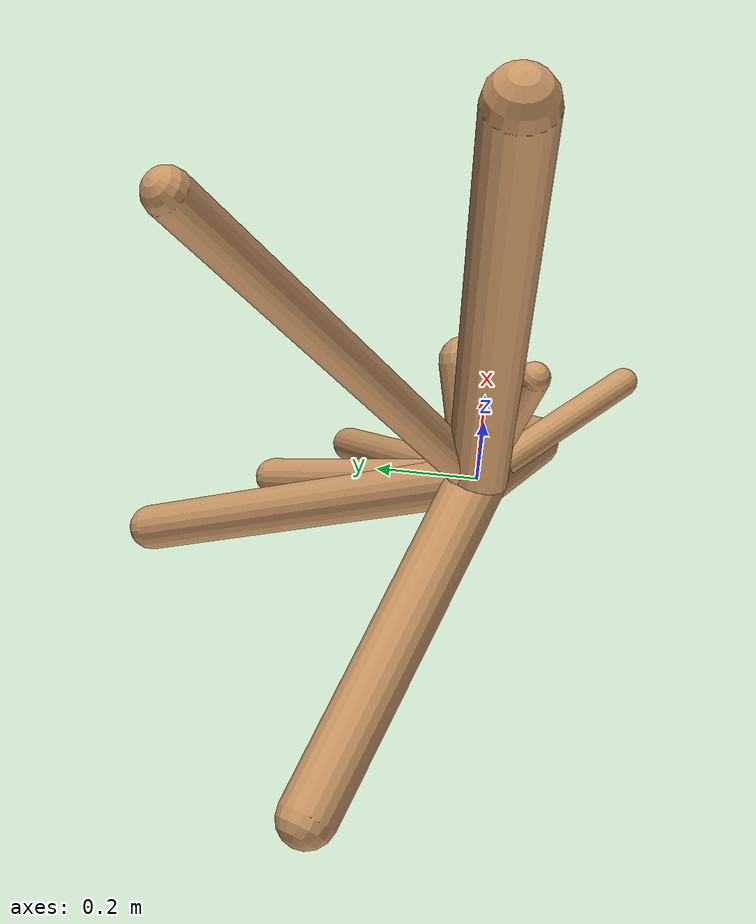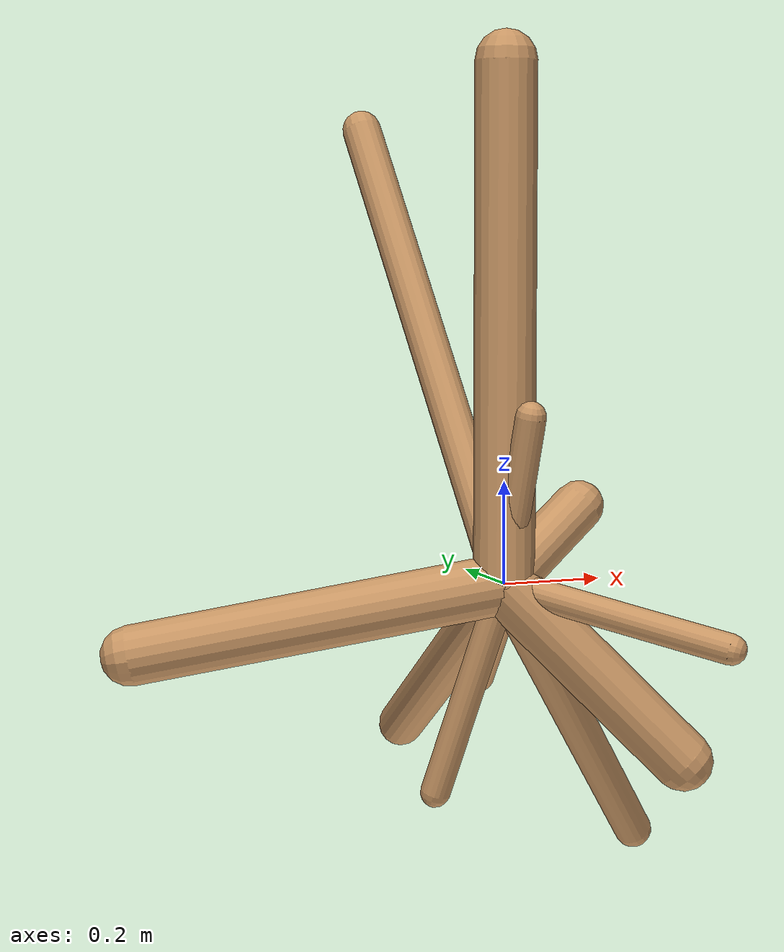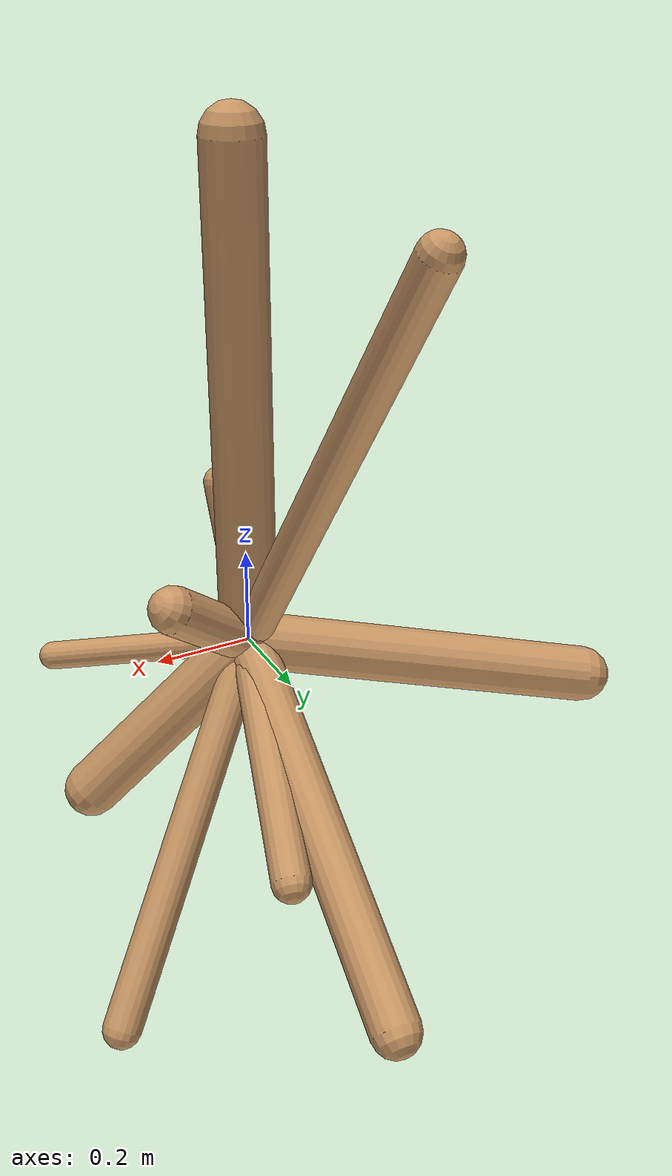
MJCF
<!--
                    joint_number: 10
                    -->
                    <mujoco model="randomrobot">
                        <compiler angle="degree" coordinate="global" inertiafromgeom="true"/>
                        <default>
                        <joint armature="0.01" damping=".1" limited="true"/>
                        <geom conaffinity="0" condim="3" contype="1" density="1000" friction="0.8 .1 .1" rgba="0.8 0.6 .4 1"/>
                        </default>
                        <option integrator="RK4" timestep="0.002"/>
                        <worldbody>
                    <body name='torso' pos='0.00 0.00 1.12'><geom fromto='0 0 0 0.00 0.00 1.00' name='torso_geom' size='0.06' type='capsule'/><inertial mass='0.3'/><body name='L0_D1' pos='0.00 0.00 0.96'><joint axis='0 0 1' name='L0_D1_joint' pos='0 0 0' range='65.95 127.74' type='hinge'/><geom fromto='0 0 0 0.18 0.05 0.14' name='L0_D1_geom' size='0.05' type='capsule'/><inertial mass='0.3'/><body name='L1_D0' pos='0.16 0.05 0.12'><joint axis='0 0 1' name='L1_D0_joint' pos='0 0 0' range='62.55 101.24' type='hinge'/><geom fromto='0 0 0 -0.12 0.49 0.89' name='L1_D0_geom' size='0.04' type='capsule'/><inertial mass='0.3'/></body></body><body name='L2_D1' pos='0.00 0.00 0.53'><joint axis='0 0 1' name='L2_D1_joint' pos='0 0 0' range='47.33 123.18' type='hinge'/><geom fromto='0 0 0 0.02 -0.08 0.33' name='L2_D1_geom' size='0.03' type='capsule'/><inertial mass='0.3'/><body name='L3_D0' pos='0.01 -0.03 0.14'><joint axis='0 0 1' name='L3_D0_joint' pos='0 0 0' range='9.13 179.93' type='hinge'/><geom fromto='0 0 0 0.44 0.32 -0.61' name='L3_D0_geom' size='0.04' type='capsule'/><inertial mass='0.3'/></body><body name='L4_D0' pos='0.01 -0.06 0.23'><joint axis='1 0 0' name='L4_D0_joint' pos='0 0 0' range='83.37 127.75' type='hinge'/><geom fromto='0 0 0 0.33 -0.12 -0.35' name='L4_D0_geom' size='0.06' type='capsule'/><inertial mass='0.3'/></body><body name='L5_D0' pos='0.01 -0.04 0.17'><joint axis='0 0 1' name='L5_D0_joint' pos='0 0 0' range='70.61 167.83' type='hinge'/><geom fromto='0 0 0 0.34 -0.29 -0.10' name='L5_D0_geom' size='0.03' type='capsule'/><inertial mass='0.3'/></body></body><body name='L6_D1' pos='0.00 0.00 0.16'><joint axis='0 1 0' name='L6_D1_joint' pos='0 0 0' range='11.12 105.99' type='hinge'/><geom fromto='0 0 0 0.05 0.72 -0.43' name='L6_D1_geom' size='0.05' type='capsule'/><inertial mass='0.3'/><body name='L7_D0' pos='0.05 0.69 -0.41'><joint axis='1 0 0' name='L7_D0_joint' pos='0 0 0' range='23.47 129.88' type='hinge'/><geom fromto='0 0 0 0.12 0.44 -0.27' name='L7_D0_geom' size='0.04' type='capsule'/><inertial mass='0.3'/></body><body name='L8_D0' pos='0.03 0.45 -0.27'><joint axis='0 0 1' name='L8_D0_joint' pos='0 0 0' range='3.28 6.23' type='hinge'/><geom fromto='0 0 0 -0.68 0.25 -0.14' name='L8_D0_geom' size='0.06' type='capsule'/><inertial mass='0.3'/></body></body><body name='L9_D1' pos='0.00 0.00 0.95'><joint axis='0 1 0' name='L9_D1_joint' pos='0 0 0' range='107.72 157.57' type='hinge'/><geom fromto='0 0 0 -0.10 0.11 -0.43' name='L9_D1_geom' size='0.03' type='capsule'/><inertial mass='0.3'/></body></body>
                        </worldbody>
                    </mujoco>
